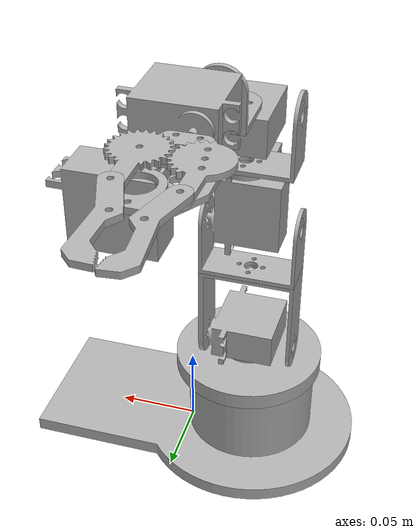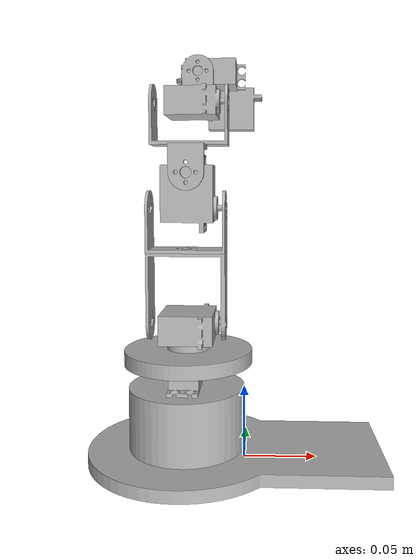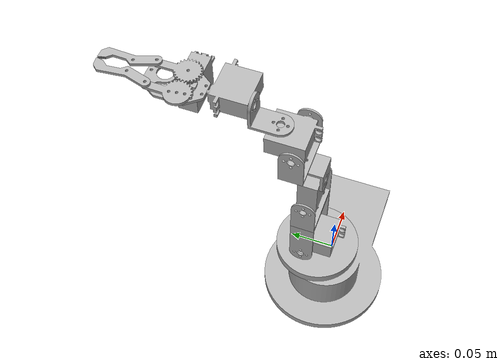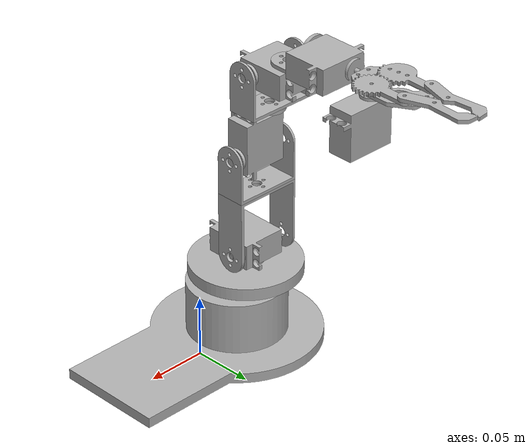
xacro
<?xml version="1.0" ?>
<robot name="rbmuse" xmlns:xacro="http://www.ros.org/wiki/xacro">

<xacro:include filename="$(find rbmuse_description)/urdf/materials.xacro" />
<xacro:include filename="$(find rbmuse_description)/urdf/rbmuse.trans" />
<xacro:include filename="$(find rbmuse_description)/urdf/rbmuse.gazebo" />
<link name="base_link">
  <inertial>
    <origin xyz="-0.026168976468017534 -0.0005496586417581346 0.01778804529166589" rpy="0 0 0"/>
    <mass value="3.0751047880633586"/>
    <inertia ixx="0.002856" iyy="0.006289" izz="0.007631" ixy="7e-06" iyz="-1e-06" ixz="0.000585"/>
  </inertial>
  <visual>
    <origin xyz="0 0 0" rpy="0 0 0"/>
    <geometry>
      <mesh filename="package://rbmuse_description/meshes/base_link.stl" scale="0.001 0.001 0.001"/>
    </geometry>
    <material name="silver"/>
  </visual>
  <collision>
    <origin xyz="0 0 0" rpy="0 0 0"/>
    <geometry>
      <mesh filename="package://rbmuse_description/meshes/base_link.stl" scale="0.001 0.001 0.001"/>
    </geometry>
  </collision>
</link>

<link name="motor1_1">
  <inertial>
    <origin xyz="0.03930371256985485 0.0021696453874637547 -0.008593146614866543" rpy="0 0 0"/>
    <mass value="0.24771286336269865"/>
    <inertia ixx="6.4e-05" iyy="3.8e-05" izz="4.3e-05" ixy="-0.0" iyz="-1e-06" ixz="-0.0"/>
  </inertial>
  <visual>
    <origin xyz="0.079145 0.00249 -0.050267" rpy="0 0 0"/>
    <geometry>
      <mesh filename="package://rbmuse_description/meshes/motor1_1.stl" scale="0.001 0.001 0.001"/>
    </geometry>
    <material name="silver"/>
  </visual>
  <collision>
    <origin xyz="0.079145 0.00249 -0.050267" rpy="0 0 0"/>
    <geometry>
      <mesh filename="package://rbmuse_description/meshes/motor1_1.stl" scale="0.001 0.001 0.001"/>
    </geometry>
  </collision>
</link>

<link name="disk_1">
  <inertial>
    <origin xyz="3.492033330554367e-07 9.747354081292986e-07 0.005492676065882121" rpy="0 0 0"/>
    <mass value="0.5311101141935193"/>
    <inertia ixx="0.000261" iyy="0.000261" izz="0.000509" ixy="0.0" iyz="0.0" ixz="0.0"/>
  </inertial>
  <visual>
    <origin xyz="0.039762 -0.009587 -0.06413" rpy="0 0 0"/>
    <geometry>
      <mesh filename="package://rbmuse_description/meshes/disk_1.stl" scale="0.001 0.001 0.001"/>
    </geometry>
    <material name="silver"/>
  </visual>
  <collision>
    <origin xyz="0.039762 -0.009587 -0.06413" rpy="0 0 0"/>
    <geometry>
      <mesh filename="package://rbmuse_description/meshes/disk_1.stl" scale="0.001 0.001 0.001"/>
    </geometry>
  </collision>
</link>

<link name="motor2_1">
  <inertial>
    <origin xyz="0.0005432628975196307 0.00019610580267081373 0.0102500382122543" rpy="0 0 0"/>
    <mass value="0.24771286336269865"/>
    <inertia ixx="4.3e-05" iyy="3.8e-05" izz="6.4e-05" ixy="-1e-06" iyz="0.0" ixz="0.0"/>
  </inertial>
  <visual>
    <origin xyz="0.039761 -0.00959 -0.08013" rpy="0 0 0"/>
    <geometry>
      <mesh filename="package://rbmuse_description/meshes/motor2_1.stl" scale="0.001 0.001 0.001"/>
    </geometry>
    <material name="silver"/>
  </visual>
  <collision>
    <origin xyz="0.039761 -0.00959 -0.08013" rpy="0 0 0"/>
    <geometry>
      <mesh filename="package://rbmuse_description/meshes/motor2_1.stl" scale="0.001 0.001 0.001"/>
    </geometry>
  </collision>
</link>

<link name="bigu_1">
  <inertial>
    <origin xyz="-0.02199563550171054 0.0001809953785818011 0.028905156107693994" rpy="0 0 0"/>
    <mass value="0.0784222615280103"/>
    <inertia ixx="3.4e-05" iyy="7.5e-05" izz="5e-05" ixy="0.0" iyz="-0.0" ixz="2e-06"/>
  </inertial>
  <visual>
    <origin xyz="0.016681 -0.01951 -0.090377" rpy="0 0 0"/>
    <geometry>
      <mesh filename="package://rbmuse_description/meshes/bigu_1.stl" scale="0.001 0.001 0.001"/>
    </geometry>
    <material name="silver"/>
  </visual>
  <collision>
    <origin xyz="0.016681 -0.01951 -0.090377" rpy="0 0 0"/>
    <geometry>
      <mesh filename="package://rbmuse_description/meshes/bigu_1.stl" scale="0.001 0.001 0.001"/>
    </geometry>
  </collision>
</link>

<link name="smallu_1">
  <inertial>
    <origin xyz="9.380930374724983e-07 2.4460137672752125e-06 0.011594145388475141" rpy="0 0 0"/>
    <mass value="0.05393922534960198"/>
    <inertia ixx="1.2e-05" iyy="3.7e-05" izz="3e-05" ixy="0.0" iyz="-0.0" ixz="0.0"/>
  </inertial>
  <visual>
    <origin xyz="0.041679 -0.01972 -0.141378" rpy="0 0 0"/>
    <geometry>
      <mesh filename="package://rbmuse_description/meshes/smallu_1.stl" scale="0.001 0.001 0.001"/>
    </geometry>
    <material name="silver"/>
  </visual>
  <collision>
    <origin xyz="0.041679 -0.01972 -0.141378" rpy="0 0 0"/>
    <geometry>
      <mesh filename="package://rbmuse_description/meshes/smallu_1.stl" scale="0.001 0.001 0.001"/>
    </geometry>
  </collision>
</link>

<link name="motor3_1">
  <inertial>
    <origin xyz="-0.024457366779002194 0.00019600493077282302 0.009903111346328625" rpy="0 0 0"/>
    <mass value="0.24771286336269865"/>
    <inertia ixx="4.3e-05" iyy="6.4e-05" izz="3.8e-05" ixy="0.0" iyz="-0.0" ixz="1e-06"/>
  </inertial>
  <visual>
    <origin xyz="0.015678 -0.019521 -0.172877" rpy="0 0 0"/>
    <geometry>
      <mesh filename="package://rbmuse_description/meshes/motor3_1.stl" scale="0.001 0.001 0.001"/>
    </geometry>
    <material name="silver"/>
  </visual>
  <collision>
    <origin xyz="0.015678 -0.019521 -0.172877" rpy="0 0 0"/>
    <geometry>
      <mesh filename="package://rbmuse_description/meshes/motor3_1.stl" scale="0.001 0.001 0.001"/>
    </geometry>
  </collision>
</link>

<link name="lshape_1">
  <inertial>
    <origin xyz="-0.1647141046884117 -0.051643015147499916 0.036814200251928664" rpy="0 0 0"/>
    <mass value="0.03417797904336539"/>
    <inertia ixx="7e-06" iyy="5e-06" izz="7e-06" ixy="-0.0" iyz="-2e-06" ixz="-0.0"/>
  </inertial>
  <visual>
    <origin xyz="-0.124023 -0.069424 -0.173711" rpy="0 0 0"/>
    <geometry>
      <mesh filename="package://rbmuse_description/meshes/lshape_1.stl" scale="0.001 0.001 0.001"/>
    </geometry>
    <material name="silver"/>
  </visual>
  <collision>
    <origin xyz="-0.124023 -0.069424 -0.173711" rpy="0 0 0"/>
    <geometry>
      <mesh filename="package://rbmuse_description/meshes/lshape_1.stl" scale="0.001 0.001 0.001"/>
    </geometry>
  </collision>
</link>

<link name="smallu1_1">
  <inertial>
    <origin xyz="6.186610709002505e-07 2.474644159582151e-06 0.011593815204141433" rpy="0 0 0"/>
    <mass value="0.05393922534960198"/>
    <inertia ixx="1.2e-05" iyy="3.7e-05" izz="3e-05" ixy="0.0" iyz="-0.0" ixz="0.0"/>
  </inertial>
  <visual>
    <origin xyz="0.040561 -0.034179 -0.217975" rpy="0 0 0"/>
    <geometry>
      <mesh filename="package://rbmuse_description/meshes/smallu1_1.stl" scale="0.001 0.001 0.001"/>
    </geometry>
    <material name="silver"/>
  </visual>
  <collision>
    <origin xyz="0.040561 -0.034179 -0.217975" rpy="0 0 0"/>
    <geometry>
      <mesh filename="package://rbmuse_description/meshes/smallu1_1.stl" scale="0.001 0.001 0.001"/>
    </geometry>
  </collision>
</link>

<link name="motor4_1">
  <inertial>
    <origin xyz="-0.024379636684416315 0.010095761121906667 -1.7608738211438713e-06" rpy="0 0 0"/>
    <mass value="0.24771286336269865"/>
    <inertia ixx="4.3e-05" iyy="3.8e-05" izz="6.4e-05" ixy="1e-06" iyz="0.0" ixz="0.0"/>
  </inertial>
  <visual>
    <origin xyz="0.01456 -0.03398 -0.249474" rpy="0 0 0"/>
    <geometry>
      <mesh filename="package://rbmuse_description/meshes/motor4_1.stl" scale="0.001 0.001 0.001"/>
    </geometry>
    <material name="silver"/>
  </visual>
  <collision>
    <origin xyz="0.01456 -0.03398 -0.249474" rpy="0 0 0"/>
    <geometry>
      <mesh filename="package://rbmuse_description/meshes/motor4_1.stl" scale="0.001 0.001 0.001"/>
    </geometry>
  </collision>
</link>

<link name="lshape2_1">
  <inertial>
    <origin xyz="-0.24047463918656625 0.07237662687230707 0.06742629492159574" rpy="0 0 0"/>
    <mass value="0.03417797904336539"/>
    <inertia ixx="7e-06" iyy="5e-06" izz="7e-06" ixy="-0.0" iyz="-2e-06" ixz="-0.0"/>
  </inertial>
  <visual>
    <origin xyz="-0.201205 0.001699 -0.199743" rpy="0 0 0"/>
    <geometry>
      <mesh filename="package://rbmuse_description/meshes/lshape2_1.stl" scale="0.001 0.001 0.001"/>
    </geometry>
    <material name="silver"/>
  </visual>
  <collision>
    <origin xyz="-0.201205 0.001699 -0.199743" rpy="0 0 0"/>
    <geometry>
      <mesh filename="package://rbmuse_description/meshes/lshape2_1.stl" scale="0.001 0.001 0.001"/>
    </geometry>
  </collision>
</link>

<link name="motor5_1">
  <inertial>
    <origin xyz="0.08165331636898154 0.2981306692560505 0.059107909660422175" rpy="0 0 0"/>
    <mass value="0.24771286336269865"/>
    <inertia ixx="3.8e-05" iyy="4.3e-05" izz="6.4e-05" ixy="1e-06" iyz="0.0" ixz="0.0"/>
  </inertial>
  <visual>
    <origin xyz="0.11088 0.197184 -0.220601" rpy="0 0 0"/>
    <geometry>
      <mesh filename="package://rbmuse_description/meshes/motor5_1.stl" scale="0.001 0.001 0.001"/>
    </geometry>
    <material name="silver"/>
  </visual>
  <collision>
    <origin xyz="0.11088 0.197184 -0.220601" rpy="0 0 0"/>
    <geometry>
      <mesh filename="package://rbmuse_description/meshes/motor5_1.stl" scale="0.001 0.001 0.001"/>
    </geometry>
  </collision>
</link>

<link name="gbase_1">
  <inertial>
    <origin xyz="-0.0008440157289839254 0.030131425640598536 -7.070589467750299e-06" rpy="0 0 0"/>
    <mass value="0.03250334179699039"/>
    <inertia ixx="1.1e-05" iyy="5e-06" izz="1.5e-05" ixy="0.0" iyz="0.0" ixz="0.0"/>
  </inertial>
  <visual>
    <origin xyz="0.038935 -0.125483 -0.279704" rpy="0 0 0"/>
    <geometry>
      <mesh filename="package://rbmuse_description/meshes/gbase_1.stl" scale="0.001 0.001 0.001"/>
    </geometry>
    <material name="silver"/>
  </visual>
  <collision>
    <origin xyz="0.038935 -0.125483 -0.279704" rpy="0 0 0"/>
    <geometry>
      <mesh filename="package://rbmuse_description/meshes/gbase_1.stl" scale="0.001 0.001 0.001"/>
    </geometry>
  </collision>
</link>

<link name="motor6_1">
  <inertial>
    <origin xyz="0.04631958605241957 -0.288594688666587 0.12592984428841508" rpy="0 0 0"/>
    <mass value="0.24771286336269865"/>
    <inertia ixx="3.8e-05" iyy="6.4e-05" izz="4.3e-05" ixy="0.0" iyz="-0.0" ixz="1e-06"/>
  </inertial>
  <visual>
    <origin xyz="0.061616 -0.437836 -0.131809" rpy="0 0 0"/>
    <geometry>
      <mesh filename="package://rbmuse_description/meshes/motor6_1.stl" scale="0.001 0.001 0.001"/>
    </geometry>
    <material name="silver"/>
  </visual>
  <collision>
    <origin xyz="0.061616 -0.437836 -0.131809" rpy="0 0 0"/>
    <geometry>
      <mesh filename="package://rbmuse_description/meshes/motor6_1.stl" scale="0.001 0.001 0.001"/>
    </geometry>
  </collision>
</link>

<link name="glinkr_1">
  <inertial>
    <origin xyz="4.3168479621557426e-05 0.005489355444972671 0.0014984981238657658" rpy="0 0 0"/>
    <mass value="0.01630298468358439"/>
    <inertia ixx="2e-06" iyy="1e-06" izz="3e-06" ixy="-0.0" iyz="0.0" ixz="0.0"/>
  </inertial>
  <visual>
    <origin xyz="0.025197 -0.149325 -0.282198" rpy="0 0 0"/>
    <geometry>
      <mesh filename="package://rbmuse_description/meshes/glinkr_1.stl" scale="0.001 0.001 0.001"/>
    </geometry>
    <material name="silver"/>
  </visual>
  <collision>
    <origin xyz="0.025197 -0.149325 -0.282198" rpy="0 0 0"/>
    <geometry>
      <mesh filename="package://rbmuse_description/meshes/glinkr_1.stl" scale="0.001 0.001 0.001"/>
    </geometry>
  </collision>
</link>

<link name="clawr_1">
  <inertial>
    <origin xyz="-0.0047623050914065435 0.024422750111204483 0.0014943425639101782" rpy="0 0 0"/>
    <mass value="0.012557670523597225"/>
    <inertia ixx="4e-06" iyy="0.0" izz="4e-06" ixy="0.0" iyz="0.0" ixz="-0.0"/>
  </inertial>
  <visual>
    <origin xyz="0.024952 -0.180325 -0.285191" rpy="0 0 0"/>
    <geometry>
      <mesh filename="package://rbmuse_description/meshes/clawr_1.stl" scale="0.001 0.001 0.001"/>
    </geometry>
    <material name="silver"/>
  </visual>
  <collision>
    <origin xyz="0.024952 -0.180325 -0.285191" rpy="0 0 0"/>
    <geometry>
      <mesh filename="package://rbmuse_description/meshes/clawr_1.stl" scale="0.001 0.001 0.001"/>
    </geometry>
  </collision>
</link>

<link name="glinkl_1">
  <inertial>
    <origin xyz="0.0004973925200013815 0.005155127642888696 0.001498638427966159" rpy="0 0 0"/>
    <mass value="0.01672496232433782"/>
    <inertia ixx="2e-06" iyy="1e-06" izz="3e-06" ixy="0.0" iyz="0.0" ixz="0.0"/>
  </inertial>
  <visual>
    <origin xyz="0.052197 -0.149539 -0.281199" rpy="0 0 0"/>
    <geometry>
      <mesh filename="package://rbmuse_description/meshes/glinkl_1.stl" scale="0.001 0.001 0.001"/>
    </geometry>
    <material name="silver"/>
  </visual>
  <collision>
    <origin xyz="0.052197 -0.149539 -0.281199" rpy="0 0 0"/>
    <geometry>
      <mesh filename="package://rbmuse_description/meshes/glinkl_1.stl" scale="0.001 0.001 0.001"/>
    </geometry>
  </collision>
</link>

<link name="clawl_1">
  <inertial>
    <origin xyz="0.0036533334329303183 0.02461343385388537 0.0014940341220606168" rpy="0 0 0"/>
    <mass value="0.012557670523597225"/>
    <inertia ixx="4e-06" iyy="0.0" izz="4e-06" ixy="-0.0" iyz="0.0" ixz="0.0"/>
  </inertial>
  <visual>
    <origin xyz="0.051996 -0.180528 -0.284192" rpy="0 0 0"/>
    <geometry>
      <mesh filename="package://rbmuse_description/meshes/clawl_1.stl" scale="0.001 0.001 0.001"/>
    </geometry>
    <material name="silver"/>
  </visual>
  <collision>
    <origin xyz="0.051996 -0.180528 -0.284192" rpy="0 0 0"/>
    <geometry>
      <mesh filename="package://rbmuse_description/meshes/clawl_1.stl" scale="0.001 0.001 0.001"/>
    </geometry>
  </collision>
</link>

<joint name="Rigid1" type="fixed">
  <origin xyz="-0.079145 -0.00249 0.050267" rpy="0 0 0"/>
  <parent link="base_link"/>
  <child link="motor1_1"/>
</joint>

<joint name="Revolute2" type="revolute">
  <origin xyz="0.039383 0.012077 0.013863" rpy="0 0 0"/>
  <parent link="motor1_1"/>
  <child link="disk_1"/>
  <axis xyz="4.2e-05 0.000227 1.0"/>
  <limit upper="3.141593" lower="0.0" effort="100" velocity="100"/>
</joint>

<joint name="Rigid3" type="fixed">
  <origin xyz="1e-06 3e-06 0.016" rpy="0 0 0"/>
  <parent link="disk_1"/>
  <child link="motor2_1"/>
</joint>

<joint name="Revolute4" type="revolute">
  <origin xyz="0.02308 0.00992 0.010247" rpy="0 0 0"/>
  <parent link="motor2_1"/>
  <child link="bigu_1"/>
  <axis xyz="0.999969 -0.007924 -4e-05"/>
  <limit upper="0.0" lower="-1.396263" effort="100" velocity="100"/>
</joint>

<joint name="Rigid5" type="fixed">
  <origin xyz="-0.024998 0.00021 0.051001" rpy="0 0 0"/>
  <parent link="bigu_1"/>
  <child link="smallu_1"/>
</joint>

<joint name="Revolute6" type="revolute">
  <origin xyz="0.026001 -0.000199 0.031499" rpy="0 0 0"/>
  <parent link="smallu_1"/>
  <child link="motor3_1"/>
  <axis xyz="0.999969 -0.007924 -4e-05"/>
  <limit upper="1.396263" lower="0.0" effort="100" velocity="100"/>
</joint>

<joint name="Rigid7" type="fixed">
  <origin xyz="0.139701 0.049903 0.000834" rpy="0 0 0"/>
  <parent link="motor3_1"/>
  <child link="lshape_1"/>
</joint>

<joint name="Rigid8" type="fixed">
  <origin xyz="-0.164584 -0.035245 0.044264" rpy="0 0 0"/>
  <parent link="lshape_1"/>
  <child link="smallu1_1"/>
</joint>

<joint name="Revolute9" type="revolute">
  <origin xyz="0.026001 -0.000199 0.031499" rpy="0 0 0"/>
  <parent link="smallu1_1"/>
  <child link="motor4_1"/>
  <axis xyz="0.999969 -0.007924 -4e-05"/>
  <limit upper="0.0" lower="-0.349066" effort="100" velocity="100"/>
</joint>

<joint name="Rigid39" type="fixed">
  <origin xyz="0.215765 -0.035679 -0.049731" rpy="0 0 0"/>
  <parent link="motor4_1"/>
  <child link="lshape2_1"/>
</joint>

<joint name="Rigid40" type="fixed">
  <origin xyz="-0.312085 -0.195485 0.020858" rpy="0 0 0"/>
  <parent link="lshape2_1"/>
  <child link="motor5_1"/>
</joint>

<joint name="Revolute41" type="revolute">
  <origin xyz="0.071945 0.322667 0.059103" rpy="0 0 0"/>
  <parent link="motor5_1"/>
  <child link="gbase_1"/>
  <axis xyz="0.007924 0.999969 -0.000228"/>
  <limit upper="0.0" lower="-0.349066" effort="100" velocity="100"/>
</joint>

<joint name="Rigid42" type="fixed">
  <origin xyz="-0.022681 0.312353 -0.147895" rpy="0 0 0"/>
  <parent link="gbase_1"/>
  <child link="motor6_1"/>
</joint>

<joint name="Revolute43" type="revolute">
  <origin xyz="0.036419 -0.288511 0.150389" rpy="0 0 0"/>
  <parent link="motor6_1"/>
  <child link="glinkr_1"/>
  <axis xyz="4.2e-05 0.000227 1.0"/>
  <limit upper="0.0" lower="-1.047198" effort="100" velocity="100"/>
</joint>

<joint name="Rigid44" type="fixed">
  <origin xyz="0.000245 0.031 0.002993" rpy="0 0 0"/>
  <parent link="glinkr_1"/>
  <child link="clawr_1"/>
</joint>

<joint name="Revolute45" type="revolute">
  <origin xyz="-0.013262 0.024056 0.001495" rpy="0 0 0"/>
  <parent link="gbase_1"/>
  <child link="glinkl_1"/>
  <axis xyz="4.2e-05 0.000227 1.0"/>
  <limit upper="-1.047198" lower="0.0" effort="100" velocity="100"/>
  <mimic joint="Revolute43" multiplier="-1" offset="0" />
</joint>

<joint name="Rigid46" type="fixed">
  <origin xyz="0.000201 0.030989 0.002993" rpy="0 0 0"/>
  <parent link="glinkl_1"/>
  <child link="clawl_1"/>
</joint>

</robot>

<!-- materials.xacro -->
<robot name="rbmuse" xmlns:xacro="http://www.ros.org/wiki/xacro" >

<material name="silver">
  <color rgba="0.700 0.700 0.700 1.000"/>
</material>

</robot>

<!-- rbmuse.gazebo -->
<robot name="rbmuse" xmlns:xacro="http://www.ros.org/wiki/xacro" >

<xacro:property name="body_color" value="Gazebo/Silver" />

<gazebo>
  <plugin name="control" filename="libgazebo_ros_control.so"/>
</gazebo>
<gazebo reference="base_link">
  <material>${body_color}</material>
  <mu1>0.2</mu1>
  <mu2>0.2</mu2>
  <selfCollide>true</selfCollide>
  <gravity>true</gravity>
</gazebo>

<gazebo reference="motor1_1">
  <material>${body_color}</material>
  <mu1>0.2</mu1>
  <mu2>0.2</mu2>
  <selfCollide>true</selfCollide>
</gazebo>

<gazebo reference="disk_1">
  <material>${body_color}</material>
  <mu1>0.2</mu1>
  <mu2>0.2</mu2>
  <selfCollide>true</selfCollide>
</gazebo>

<gazebo reference="motor2_1">
  <material>${body_color}</material>
  <mu1>0.2</mu1>
  <mu2>0.2</mu2>
  <selfCollide>true</selfCollide>
</gazebo>

<gazebo reference="bigu_1">
  <material>${body_color}</material>
  <mu1>0.2</mu1>
  <mu2>0.2</mu2>
  <selfCollide>true</selfCollide>
</gazebo>

<gazebo reference="smallu_1">
  <material>${body_color}</material>
  <mu1>0.2</mu1>
  <mu2>0.2</mu2>
  <selfCollide>true</selfCollide>
</gazebo>

<gazebo reference="motor3_1">
  <material>${body_color}</material>
  <mu1>0.2</mu1>
  <mu2>0.2</mu2>
  <selfCollide>true</selfCollide>
</gazebo>

<gazebo reference="lshape_1">
  <material>${body_color}</material>
  <mu1>0.2</mu1>
  <mu2>0.2</mu2>
  <selfCollide>true</selfCollide>
</gazebo>

<gazebo reference="smallu1_1">
  <material>${body_color}</material>
  <mu1>0.2</mu1>
  <mu2>0.2</mu2>
  <selfCollide>true</selfCollide>
</gazebo>

<gazebo reference="motor4_1">
  <material>${body_color}</material>
  <mu1>0.2</mu1>
  <mu2>0.2</mu2>
  <selfCollide>true</selfCollide>
</gazebo>

<gazebo reference="lshape2_1">
  <material>${body_color}</material>
  <mu1>0.2</mu1>
  <mu2>0.2</mu2>
  <selfCollide>true</selfCollide>
</gazebo>

<gazebo reference="motor5_1">
  <material>${body_color}</material>
  <mu1>0.2</mu1>
  <mu2>0.2</mu2>
  <selfCollide>true</selfCollide>
</gazebo>

<gazebo reference="gbase_1">
  <material>${body_color}</material>
  <mu1>0.2</mu1>
  <mu2>0.2</mu2>
  <selfCollide>true</selfCollide>
</gazebo>

<gazebo reference="motor6_1">
  <material>${body_color}</material>
  <mu1>0.2</mu1>
  <mu2>0.2</mu2>
  <selfCollide>true</selfCollide>
</gazebo>

<gazebo reference="glinkr_1">
  <material>${body_color}</material>
  <mu1>0.2</mu1>
  <mu2>0.2</mu2>
  <selfCollide>true</selfCollide>
</gazebo>

<gazebo reference="clawr_1">
  <material>${body_color}</material>
  <mu1>0.2</mu1>
  <mu2>0.2</mu2>
  <selfCollide>true</selfCollide>
</gazebo>

<gazebo reference="glinkl_1">
  <material>${body_color}</material>
  <mu1>0.2</mu1>
  <mu2>0.2</mu2>
  <selfCollide>true</selfCollide>
</gazebo>

<gazebo reference="clawl_1">
  <material>${body_color}</material>
  <mu1>0.2</mu1>
  <mu2>0.2</mu2>
  <selfCollide>true</selfCollide>
</gazebo>

</robot>
